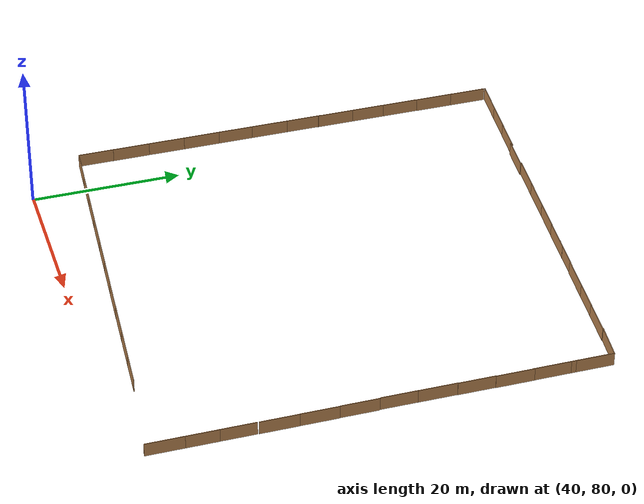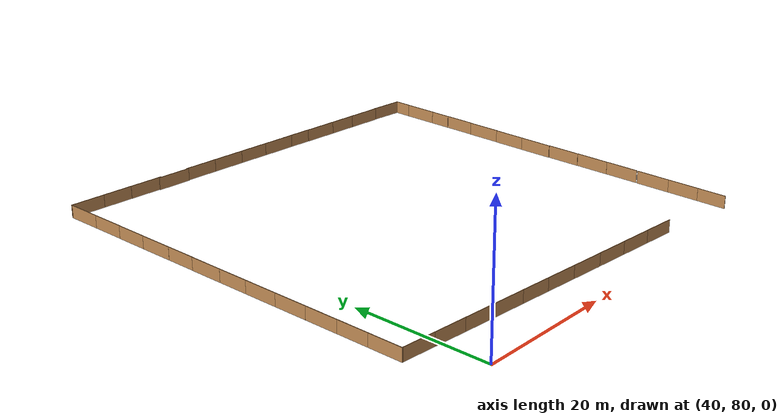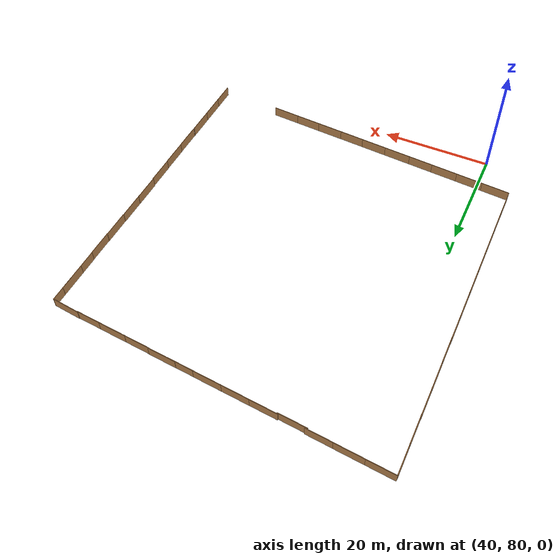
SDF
<sdf version="1.7">
 <world name="default">
  <model name="fence">
   <static>1</static>
   <link name="link">
    <pose>0 0 0.915 0 -0 0</pose>
    <collision name="collision"><geometry><box><size>0.1 5 1.83</size></box></geometry></collision>
    <visual name="visual">
     <cast_shadows>0</cast_shadows>
     <geometry><box><size>0.1 5 1.83</size></box></geometry>
     <material>
      <script>
       <uri>https://fuel.ignitionrobotics.org/1.0/athackst/models/fence/2/files/materials/scripts</uri>
       <uri>https://fuel.ignitionrobotics.org/1.0/athackst/models/fence/2/files/materials/textures</uri>
       <name>Fence/WoodBoarding</name>
      </script>
     </material>
    </visual>
   </link>
   <pose>94.0975 89.0273 0 0 -0 0</pose>
  </model>
  <model name="fence_clone">
   <static>1</static>
   <link name="link">
    <pose>0 0 0.915 0 -0 0</pose>
    <collision name="collision"><geometry><box><size>0.1 5 1.83</size></box></geometry></collision>
    <visual name="visual">
     <cast_shadows>0</cast_shadows>
     <geometry><box><size>0.1 5 1.83</size></box></geometry>
     <material>
      <script>
       <uri>https://fuel.ignitionrobotics.org/1.0/athackst/models/fence/2/files/materials/scripts</uri>
       <uri>https://fuel.ignitionrobotics.org/1.0/athackst/models/fence/2/files/materials/textures</uri>
       <name>Fence/WoodBoarding</name>
      </script>
     </material>
    </visual>
   </link>
   <pose>94.0884 93.6265 0 0 -0 0</pose>
  </model>
  <model name="fence_clone_0">
   <static>1</static>
   <link name="link">
    <pose>0 0 0.915 0 -0 0</pose>
    <collision name="collision"><geometry><box><size>0.1 5 1.83</size></box></geometry></collision>
    <visual name="visual">
     <cast_shadows>0</cast_shadows>
     <geometry><box><size>0.1 5 1.83</size></box></geometry>
     <material>
      <script>
       <uri>https://fuel.ignitionrobotics.org/1.0/athackst/models/fence/2/files/materials/scripts</uri>
       <uri>https://fuel.ignitionrobotics.org/1.0/athackst/models/fence/2/files/materials/textures</uri>
       <name>Fence/WoodBoarding</name>
      </script>
     </material>
    </visual>
   </link>
   <pose>94.1133 98.7974 0 0 -0 0</pose>
  </model>
  <model name="fence_clone_1">
   <static>1</static>
   <link name="link">
    <pose>0 0 0.915 0 -0 0</pose>
    <collision name="collision"><geometry><box><size>0.1 5 1.83</size></box></geometry></collision>
    <visual name="visual">
     <cast_shadows>0</cast_shadows>
     <geometry><box><size>0.1 5 1.83</size></box></geometry>
     <material>
      <script>
       <uri>https://fuel.ignitionrobotics.org/1.0/athackst/models/fence/2/files/materials/scripts</uri>
       <uri>https://fuel.ignitionrobotics.org/1.0/athackst/models/fence/2/files/materials/textures</uri>
       <name>Fence/WoodBoarding</name>
      </script>
     </material>
    </visual>
   </link>
   <pose>94.091 103.784 0 0 -0 0</pose>
  </model>
  <model name="fence_clone_2">
   <static>1</static>
   <link name="link">
    <pose>0 0 0.915 0 -0 0</pose>
    <collision name="collision"><geometry><box><size>0.1 5 1.83</size></box></geometry></collision>
    <visual name="visual">
     <cast_shadows>0</cast_shadows>
     <geometry><box><size>0.1 5 1.83</size></box></geometry>
     <material>
      <script>
       <uri>https://fuel.ignitionrobotics.org/1.0/athackst/models/fence/2/files/materials/scripts</uri>
       <uri>https://fuel.ignitionrobotics.org/1.0/athackst/models/fence/2/files/materials/textures</uri>
       <name>Fence/WoodBoarding</name>
      </script>
     </material>
    </visual>
   </link>
   <pose>94.05 108.799 0 0 -0 0</pose>
  </model>
  <model name="fence_clone_3">
   <static>1</static>
   <link name="link">
    <pose>0 0 0.915 0 -0 0</pose>
    <collision name="collision"><geometry><box><size>0.1 5 1.83</size></box></geometry></collision>
    <visual name="visual">
     <cast_shadows>0</cast_shadows>
     <geometry><box><size>0.1 5 1.83</size></box></geometry>
     <material>
      <script>
       <uri>https://fuel.ignitionrobotics.org/1.0/athackst/models/fence/2/files/materials/scripts</uri>
       <uri>https://fuel.ignitionrobotics.org/1.0/athackst/models/fence/2/files/materials/textures</uri>
       <name>Fence/WoodBoarding</name>
      </script>
     </material>
    </visual>
   </link>
   <pose>93.9727 113.815 0 0 -0 0</pose>
  </model>
  <model name="fence_clone_4">
   <static>1</static>
   <link name="link">
    <pose>0 0 0.915 0 -0 0</pose>
    <collision name="collision"><geometry><box><size>0.1 5 1.83</size></box></geometry></collision>
    <visual name="visual">
     <cast_shadows>0</cast_shadows>
     <geometry><box><size>0.1 5 1.83</size></box></geometry>
     <material>
      <script>
       <uri>https://fuel.ignitionrobotics.org/1.0/athackst/models/fence/2/files/materials/scripts</uri>
       <uri>https://fuel.ignitionrobotics.org/1.0/athackst/models/fence/2/files/materials/textures</uri>
       <name>Fence/WoodBoarding</name>
      </script>
     </material>
    </visual>
   </link>
   <pose>93.9907 118.594 0 0 -0 0</pose>
  </model>
  <model name="fence_clone_5">
   <static>1</static>
   <link name="link">
    <pose>0 0 0.915 0 -0 0</pose>
    <collision name="collision"><geometry><box><size>0.1 5 1.83</size></box></geometry></collision>
    <visual name="visual">
     <cast_shadows>0</cast_shadows>
     <geometry><box><size>0.1 5 1.83</size></box></geometry>
     <material>
      <script>
       <uri>https://fuel.ignitionrobotics.org/1.0/athackst/models/fence/2/files/materials/scripts</uri>
       <uri>https://fuel.ignitionrobotics.org/1.0/athackst/models/fence/2/files/materials/textures</uri>
       <name>Fence/WoodBoarding</name>
      </script>
     </material>
    </visual>
   </link>
   <pose>94.0368 123.601 0 0 -0 0</pose>
  </model>
  <model name="fence_clone_6">
   <static>1</static>
   <link name="link">
    <pose>0 0 0.915 0 -0 0</pose>
    <collision name="collision"><geometry><box><size>0.1 5 1.83</size></box></geometry></collision>
    <visual name="visual">
     <cast_shadows>0</cast_shadows>
     <geometry><box><size>0.1 5 1.83</size></box></geometry>
     <material>
      <script>
       <uri>https://fuel.ignitionrobotics.org/1.0/athackst/models/fence/2/files/materials/scripts</uri>
       <uri>https://fuel.ignitionrobotics.org/1.0/athackst/models/fence/2/files/materials/textures</uri>
       <name>Fence/WoodBoarding</name>
      </script>
     </material>
    </visual>
   </link>
   <pose>94.0843 128.453 0 0 -0 0</pose>
  </model>
  <model name="fence_clone_7">
   <static>1</static>
   <link name="link">
    <pose>0 0 0.915 0 -0 0</pose>
    <collision name="collision"><geometry><box><size>0.1 5 1.83</size></box></geometry></collision>
    <visual name="visual">
     <cast_shadows>0</cast_shadows>
     <geometry><box><size>0.1 5 1.83</size></box></geometry>
     <material>
      <script>
       <uri>https://fuel.ignitionrobotics.org/1.0/athackst/models/fence/2/files/materials/scripts</uri>
       <uri>https://fuel.ignitionrobotics.org/1.0/athackst/models/fence/2/files/materials/textures</uri>
       <name>Fence/WoodBoarding</name>
      </script>
     </material>
    </visual>
   </link>
   <pose>94.0552 133.187 0 0 -0 0</pose>
  </model>
  <model name="fence_clone_8">
   <static>1</static>
   <link name="link">
    <pose>0 0 0.915 0 -0 0</pose>
    <collision name="collision"><geometry><box><size>0.1 5 1.83</size></box></geometry></collision>
    <visual name="visual">
     <cast_shadows>0</cast_shadows>
     <geometry><box><size>0.1 5 1.83</size></box></geometry>
     <material>
      <script>
       <uri>https://fuel.ignitionrobotics.org/1.0/athackst/models/fence/2/files/materials/scripts</uri>
       <uri>https://fuel.ignitionrobotics.org/1.0/athackst/models/fence/2/files/materials/textures</uri>
       <name>Fence/WoodBoarding</name>
      </script>
     </material>
    </visual>
   </link>
   <pose>94.0587 138.819 0 0 -0 0</pose>
  </model>
  <model name="fence_clone_7_clone">
   <static>1</static>
   <link name="link">
    <pose>0 0 0.915 0 -0 0</pose>
    <collision name="collision"><geometry><box><size>0.1 5 1.83</size></box></geometry></collision>
    <visual name="visual">
     <cast_shadows>0</cast_shadows>
     <geometry><box><size>0.1 5 1.83</size></box></geometry>
     <material>
      <script>
       <uri>https://fuel.ignitionrobotics.org/1.0/athackst/models/fence/2/files/materials/scripts</uri>
       <uri>https://fuel.ignitionrobotics.org/1.0/athackst/models/fence/2/files/materials/textures</uri>
       <name>Fence/WoodBoarding</name>
      </script>
     </material>
    </visual>
   </link>
   <pose>94.0544 136.339 0 0 -0 0</pose>
  </model>
  <model name="fence_clone_7_clone_clone">
   <static>1</static>
   <link name="link">
    <pose>0 0 0.915 0 -0 0</pose>
    <collision name="collision"><geometry><box><size>0.1 5 1.83</size></box></geometry></collision>
    <visual name="visual">
     <cast_shadows>0</cast_shadows>
     <geometry><box><size>0.1 5 1.83</size></box></geometry>
     <material>
      <script>
       <uri>https://fuel.ignitionrobotics.org/1.0/athackst/models/fence/2/files/materials/scripts</uri>
       <uri>https://fuel.ignitionrobotics.org/1.0/athackst/models/fence/2/files/materials/textures</uri>
       <name>Fence/WoodBoarding</name>
      </script>
     </material>
    </visual>
   </link>
   <pose>91.6023 141.517 0 0 -0 1.4702</pose>
  </model>
  <model name="fence_clone_7_clone_clone_clone">
   <static>1</static>
   <link name="link">
    <pose>0 0 0.915 0 -0 0</pose>
    <collision name="collision"><geometry><box><size>0.1 5 1.83</size></box></geometry></collision>
    <visual name="visual">
     <cast_shadows>0</cast_shadows>
     <geometry><box><size>0.1 5 1.83</size></box></geometry>
     <material>
      <script>
       <uri>https://fuel.ignitionrobotics.org/1.0/athackst/models/fence/2/files/materials/scripts</uri>
       <uri>https://fuel.ignitionrobotics.org/1.0/athackst/models/fence/2/files/materials/textures</uri>
       <name>Fence/WoodBoarding</name>
      </script>
     </material>
    </visual>
   </link>
   <pose>86.8192 141.871 0 0 -0 1.49488</pose>
  </model>
  <model name="fence_clone_7_clone_clone_clone_0">
   <static>1</static>
   <link name="link">
    <pose>0 0 0.915 0 -0 0</pose>
    <collision name="collision"><geometry><box><size>0.1 5 1.83</size></box></geometry></collision>
    <visual name="visual">
     <cast_shadows>0</cast_shadows>
     <geometry><box><size>0.1 5 1.83</size></box></geometry>
     <material>
      <script>
       <uri>https://fuel.ignitionrobotics.org/1.0/athackst/models/fence/2/files/materials/scripts</uri>
       <uri>https://fuel.ignitionrobotics.org/1.0/athackst/models/fence/2/files/materials/textures</uri>
       <name>Fence/WoodBoarding</name>
      </script>
     </material>
    </visual>
   </link>
   <pose>82.4437 142.211 0 0 -0 1.49488</pose>
  </model>
  <model name="fence_clone_7_clone_clone_clone_1">
   <static>1</static>
   <link name="link">
    <pose>0 0 0.915 0 -0 0</pose>
    <collision name="collision"><geometry><box><size>0.1 5 1.83</size></box></geometry></collision>
    <visual name="visual">
     <cast_shadows>0</cast_shadows>
     <geometry><box><size>0.1 5 1.83</size></box></geometry>
     <material>
      <script>
       <uri>https://fuel.ignitionrobotics.org/1.0/athackst/models/fence/2/files/materials/scripts</uri>
       <uri>https://fuel.ignitionrobotics.org/1.0/athackst/models/fence/2/files/materials/textures</uri>
       <name>Fence/WoodBoarding</name>
      </script>
     </material>
    </visual>
   </link>
   <pose>77.7828 142.558 0 0 -0 1.49488</pose>
  </model>
  <model name="fence_clone_7_clone_clone_clone_2">
   <static>1</static>
   <link name="link">
    <pose>0 0 0.915 0 -0 0</pose>
    <collision name="collision"><geometry><box><size>0.1 5 1.83</size></box></geometry></collision>
    <visual name="visual">
     <cast_shadows>0</cast_shadows>
     <geometry><box><size>0.1 5 1.83</size></box></geometry>
     <material>
      <script>
       <uri>https://fuel.ignitionrobotics.org/1.0/athackst/models/fence/2/files/materials/scripts</uri>
       <uri>https://fuel.ignitionrobotics.org/1.0/athackst/models/fence/2/files/materials/textures</uri>
       <name>Fence/WoodBoarding</name>
      </script>
     </material>
    </visual>
   </link>
   <pose>73.0617 142.957 0 0 -0 1.49488</pose>
  </model>
  <model name="fence_clone_7_clone_clone_clone_3">
   <static>1</static>
   <link name="link">
    <pose>0 0 0.915 0 -0 0</pose>
    <collision name="collision"><geometry><box><size>0.1 5 1.83</size></box></geometry></collision>
    <visual name="visual">
     <cast_shadows>0</cast_shadows>
     <geometry><box><size>0.1 5 1.83</size></box></geometry>
     <material>
      <script>
       <uri>https://fuel.ignitionrobotics.org/1.0/athackst/models/fence/2/files/materials/scripts</uri>
       <uri>https://fuel.ignitionrobotics.org/1.0/athackst/models/fence/2/files/materials/textures</uri>
       <name>Fence/WoodBoarding</name>
      </script>
     </material>
    </visual>
   </link>
   <pose>69.5223 143.204 0 0 -0 1.49488</pose>
  </model>
  <model name="fence_clone_7_clone_clone_clone_4">
   <static>1</static>
   <link name="link">
    <pose>0 0 0.915 0 -0 0</pose>
    <collision name="collision"><geometry><box><size>0.1 5 1.83</size></box></geometry></collision>
    <visual name="visual">
     <cast_shadows>0</cast_shadows>
     <geometry><box><size>0.1 5 1.83</size></box></geometry>
     <material>
      <script>
       <uri>https://fuel.ignitionrobotics.org/1.0/athackst/models/fence/2/files/materials/scripts</uri>
       <uri>https://fuel.ignitionrobotics.org/1.0/athackst/models/fence/2/files/materials/textures</uri>
       <name>Fence/WoodBoarding</name>
      </script>
     </material>
    </visual>
   </link>
   <pose>64.8943 143.567 0 0 -0 1.49488</pose>
  </model>
  <model name="fence_clone_7_clone_clone_clone_5">
   <static>1</static>
   <link name="link">
    <pose>0 0 0.915 0 -0 0</pose>
    <collision name="collision"><geometry><box><size>0.1 5 1.83</size></box></geometry></collision>
    <visual name="visual">
     <cast_shadows>0</cast_shadows>
     <geometry><box><size>0.1 5 1.83</size></box></geometry>
     <material>
      <script>
       <uri>https://fuel.ignitionrobotics.org/1.0/athackst/models/fence/2/files/materials/scripts</uri>
       <uri>https://fuel.ignitionrobotics.org/1.0/athackst/models/fence/2/files/materials/textures</uri>
       <name>Fence/WoodBoarding</name>
      </script>
     </material>
    </visual>
   </link>
   <pose>60.0864 143.923 0 0 -0 1.49488</pose>
  </model>
  <model name="fence_clone_7_clone_clone_clone_6">
   <static>1</static>
   <link name="link">
    <pose>0 0 0.915 0 -0 0</pose>
    <collision name="collision"><geometry><box><size>0.1 5 1.83</size></box></geometry></collision>
    <visual name="visual">
     <cast_shadows>0</cast_shadows>
     <geometry><box><size>0.1 5 1.83</size></box></geometry>
     <material>
      <script>
       <uri>https://fuel.ignitionrobotics.org/1.0/athackst/models/fence/2/files/materials/scripts</uri>
       <uri>https://fuel.ignitionrobotics.org/1.0/athackst/models/fence/2/files/materials/textures</uri>
       <name>Fence/WoodBoarding</name>
      </script>
     </material>
    </visual>
   </link>
   <pose>55.2637 144.285 0 0 -0 1.49488</pose>
  </model>
  <model name="fence_clone_7_clone_clone_clone_7">
   <static>1</static>
   <link name="link">
    <pose>0 0 0.915 0 -0 0</pose>
    <collision name="collision"><geometry><box><size>0.1 5 1.83</size></box></geometry></collision>
    <visual name="visual">
     <cast_shadows>0</cast_shadows>
     <geometry><box><size>0.1 5 1.83</size></box></geometry>
     <material>
      <script>
       <uri>https://fuel.ignitionrobotics.org/1.0/athackst/models/fence/2/files/materials/scripts</uri>
       <uri>https://fuel.ignitionrobotics.org/1.0/athackst/models/fence/2/files/materials/textures</uri>
       <name>Fence/WoodBoarding</name>
      </script>
     </material>
    </visual>
   </link>
   <pose>50.4764 144.497 0 0 -0 1.49488</pose>
  </model>
  <model name="fence_clone_7_clone_clone_clone_8">
   <static>1</static>
   <link name="link">
    <pose>0 0 0.915 0 -0 0</pose>
    <collision name="collision"><geometry><box><size>0.1 5 1.83</size></box></geometry></collision>
    <visual name="visual">
     <cast_shadows>0</cast_shadows>
     <geometry><box><size>0.1 5 1.83</size></box></geometry>
     <material>
      <script>
       <uri>https://fuel.ignitionrobotics.org/1.0/athackst/models/fence/2/files/materials/scripts</uri>
       <uri>https://fuel.ignitionrobotics.org/1.0/athackst/models/fence/2/files/materials/textures</uri>
       <name>Fence/WoodBoarding</name>
      </script>
     </material>
    </visual>
   </link>
   <pose>45.9412 144.996 0 0 -0 1.49488</pose>
  </model>
  <model name="fence_clone_7_clone_clone_clone_9">
   <static>1</static>
   <link name="link">
    <pose>0 0 0.915 0 -0 0</pose>
    <collision name="collision"><geometry><box><size>0.1 5 1.83</size></box></geometry></collision>
    <visual name="visual">
     <cast_shadows>0</cast_shadows>
     <geometry><box><size>0.1 5 1.83</size></box></geometry>
     <material>
      <script>
       <uri>https://fuel.ignitionrobotics.org/1.0/athackst/models/fence/2/files/materials/scripts</uri>
       <uri>https://fuel.ignitionrobotics.org/1.0/athackst/models/fence/2/files/materials/textures</uri>
       <name>Fence/WoodBoarding</name>
      </script>
     </material>
    </visual>
   </link>
   <pose>41.4295 145.352 0 0 -0 1.49488</pose>
  </model>
  <model name="fence_clone_7_clone_clone_clone_10">
   <static>1</static>
   <link name="link">
    <pose>0 0 0.915 0 -0 0</pose>
    <collision name="collision"><geometry><box><size>0.1 5 1.83</size></box></geometry></collision>
    <visual name="visual">
     <cast_shadows>0</cast_shadows>
     <geometry><box><size>0.1 5 1.83</size></box></geometry>
     <material>
      <script>
       <uri>https://fuel.ignitionrobotics.org/1.0/athackst/models/fence/2/files/materials/scripts</uri>
       <uri>https://fuel.ignitionrobotics.org/1.0/athackst/models/fence/2/files/materials/textures</uri>
       <name>Fence/WoodBoarding</name>
      </script>
     </material>
    </visual>
   </link>
   <pose>36.6057 145.718 0 0 -0 1.49488</pose>
  </model>
  <model name="fence_clone_7_clone_clone_0">
   <static>1</static>
   <link name="link">
    <pose>0 0 0.915 0 -0 0</pose>
    <collision name="collision"><geometry><box><size>0.1 5 1.83</size></box></geometry></collision>
    <visual name="visual">
     <cast_shadows>0</cast_shadows>
     <geometry><box><size>0.1 5 1.83</size></box></geometry>
     <material>
      <script>
       <uri>https://fuel.ignitionrobotics.org/1.0/athackst/models/fence/2/files/materials/scripts</uri>
       <uri>https://fuel.ignitionrobotics.org/1.0/athackst/models/fence/2/files/materials/textures</uri>
       <name>Fence/WoodBoarding</name>
      </script>
     </material>
    </visual>
   </link>
   <pose>34.1448 143.259 0 0 -0 0</pose>
  </model>
  <model name="fence_clone_7_clone_clone_1">
   <static>1</static>
   <link name="link">
    <pose>0 0 0.915 0 -0 0</pose>
    <collision name="collision"><geometry><box><size>0.1 5 1.83</size></box></geometry></collision>
    <visual name="visual">
     <cast_shadows>0</cast_shadows>
     <geometry><box><size>0.1 5 1.83</size></box></geometry>
     <material>
      <script>
       <uri>https://fuel.ignitionrobotics.org/1.0/athackst/models/fence/2/files/materials/scripts</uri>
       <uri>https://fuel.ignitionrobotics.org/1.0/athackst/models/fence/2/files/materials/textures</uri>
       <name>Fence/WoodBoarding</name>
      </script>
     </material>
    </visual>
   </link>
   <pose>34.1455 138.289 0 0 -0 0</pose>
  </model>
  <model name="fence_clone_7_clone_clone_2">
   <static>1</static>
   <link name="link">
    <pose>0 0 0.915 0 -0 0</pose>
    <collision name="collision"><geometry><box><size>0.1 5 1.83</size></box></geometry></collision>
    <visual name="visual">
     <cast_shadows>0</cast_shadows>
     <geometry><box><size>0.1 5 1.83</size></box></geometry>
     <material>
      <script>
       <uri>https://fuel.ignitionrobotics.org/1.0/athackst/models/fence/2/files/materials/scripts</uri>
       <uri>https://fuel.ignitionrobotics.org/1.0/athackst/models/fence/2/files/materials/textures</uri>
       <name>Fence/WoodBoarding</name>
      </script>
     </material>
    </visual>
   </link>
   <pose>34.1203 133.334 0 0 -0 0</pose>
  </model>
  <model name="fence_clone_7_clone_clone_3">
   <static>1</static>
   <link name="link">
    <pose>0 0 0.915 0 -0 0</pose>
    <collision name="collision"><geometry><box><size>0.1 5 1.83</size></box></geometry></collision>
    <visual name="visual">
     <cast_shadows>0</cast_shadows>
     <geometry><box><size>0.1 5 1.83</size></box></geometry>
     <material>
      <script>
       <uri>https://fuel.ignitionrobotics.org/1.0/athackst/models/fence/2/files/materials/scripts</uri>
       <uri>https://fuel.ignitionrobotics.org/1.0/athackst/models/fence/2/files/materials/textures</uri>
       <name>Fence/WoodBoarding</name>
      </script>
     </material>
    </visual>
   </link>
   <pose>34.1146 128.602 0 0 -0 0</pose>
  </model>
  <model name="fence_clone_7_clone_clone_4">
   <static>1</static>
   <link name="link">
    <pose>0 0 0.915 0 -0 0</pose>
    <collision name="collision"><geometry><box><size>0.1 5 1.83</size></box></geometry></collision>
    <visual name="visual">
     <cast_shadows>0</cast_shadows>
     <geometry><box><size>0.1 5 1.83</size></box></geometry>
     <material>
      <script>
       <uri>https://fuel.ignitionrobotics.org/1.0/athackst/models/fence/2/files/materials/scripts</uri>
       <uri>https://fuel.ignitionrobotics.org/1.0/athackst/models/fence/2/files/materials/textures</uri>
       <name>Fence/WoodBoarding</name>
      </script>
     </material>
    </visual>
   </link>
   <pose>34.1239 123.914 0 0 -0 0</pose>
  </model>
  <model name="fence_clone_7_clone_clone_5">
   <static>1</static>
   <link name="link">
    <pose>0 0 0.915 0 -0 0</pose>
    <collision name="collision"><geometry><box><size>0.1 5 1.83</size></box></geometry></collision>
    <visual name="visual">
     <cast_shadows>0</cast_shadows>
     <geometry><box><size>0.1 5 1.83</size></box></geometry>
     <material>
      <script>
       <uri>https://fuel.ignitionrobotics.org/1.0/athackst/models/fence/2/files/materials/scripts</uri>
       <uri>https://fuel.ignitionrobotics.org/1.0/athackst/models/fence/2/files/materials/textures</uri>
       <name>Fence/WoodBoarding</name>
      </script>
     </material>
    </visual>
   </link>
   <pose>34.0967 119.162 0 0 -0 0</pose>
  </model>
  <model name="fence_clone_7_clone_clone_6">
   <static>1</static>
   <link name="link">
    <pose>0 0 0.915 0 -0 0</pose>
    <collision name="collision"><geometry><box><size>0.1 5 1.83</size></box></geometry></collision>
    <visual name="visual">
     <cast_shadows>0</cast_shadows>
     <geometry><box><size>0.1 5 1.83</size></box></geometry>
     <material>
      <script>
       <uri>https://fuel.ignitionrobotics.org/1.0/athackst/models/fence/2/files/materials/scripts</uri>
       <uri>https://fuel.ignitionrobotics.org/1.0/athackst/models/fence/2/files/materials/textures</uri>
       <name>Fence/WoodBoarding</name>
      </script>
     </material>
    </visual>
   </link>
   <pose>34.099 114.374 0 0 -0 0</pose>
  </model>
  <model name="fence_clone_7_clone_clone_7">
   <static>1</static>
   <link name="link">
    <pose>0 0 0.915 0 -0 0</pose>
    <collision name="collision"><geometry><box><size>0.1 5 1.83</size></box></geometry></collision>
    <visual name="visual">
     <cast_shadows>0</cast_shadows>
     <geometry><box><size>0.1 5 1.83</size></box></geometry>
     <material>
      <script>
       <uri>https://fuel.ignitionrobotics.org/1.0/athackst/models/fence/2/files/materials/scripts</uri>
       <uri>https://fuel.ignitionrobotics.org/1.0/athackst/models/fence/2/files/materials/textures</uri>
       <name>Fence/WoodBoarding</name>
      </script>
     </material>
    </visual>
   </link>
   <pose>34.0974 109.621 0 0 -0 0</pose>
  </model>
  <model name="fence_clone_7_clone_clone_8">
   <static>1</static>
   <link name="link">
    <pose>0 0 0.915 0 -0 0</pose>
    <collision name="collision"><geometry><box><size>0.1 5 1.83</size></box></geometry></collision>
    <visual name="visual">
     <cast_shadows>0</cast_shadows>
     <geometry><box><size>0.1 5 1.83</size></box></geometry>
     <material>
      <script>
       <uri>https://fuel.ignitionrobotics.org/1.0/athackst/models/fence/2/files/materials/scripts</uri>
       <uri>https://fuel.ignitionrobotics.org/1.0/athackst/models/fence/2/files/materials/textures</uri>
       <name>Fence/WoodBoarding</name>
      </script>
     </material>
    </visual>
   </link>
   <pose>34.1003 104.676 0 0 -0 0</pose>
  </model>
  <model name="fence_clone_7_clone_clone_9">
   <static>1</static>
   <link name="link">
    <pose>0 0 0.915 0 -0 0</pose>
    <collision name="collision"><geometry><box><size>0.1 5 1.83</size></box></geometry></collision>
    <visual name="visual">
     <cast_shadows>0</cast_shadows>
     <geometry><box><size>0.1 5 1.83</size></box></geometry>
     <material>
      <script>
       <uri>https://fuel.ignitionrobotics.org/1.0/athackst/models/fence/2/files/materials/scripts</uri>
       <uri>https://fuel.ignitionrobotics.org/1.0/athackst/models/fence/2/files/materials/textures</uri>
       <name>Fence/WoodBoarding</name>
      </script>
     </material>
    </visual>
   </link>
   <pose>34.1041 99.7275 0 0 -0 0</pose>
  </model>
  <model name="fence_clone_7_clone_clone_10">
   <static>1</static>
   <link name="link">
    <pose>0 0 0.915 0 -0 0</pose>
    <collision name="collision"><geometry><box><size>0.1 5 1.83</size></box></geometry></collision>
    <visual name="visual">
     <cast_shadows>0</cast_shadows>
     <geometry><box><size>0.1 5 1.83</size></box></geometry>
     <material>
      <script>
       <uri>https://fuel.ignitionrobotics.org/1.0/athackst/models/fence/2/files/materials/scripts</uri>
       <uri>https://fuel.ignitionrobotics.org/1.0/athackst/models/fence/2/files/materials/textures</uri>
       <name>Fence/WoodBoarding</name>
      </script>
     </material>
    </visual>
   </link>
   <pose>34.1108 94.796 0 0 -0 0</pose>
  </model>
  <model name="fence_clone_7_clone_clone_11">
   <static>1</static>
   <link name="link">
    <pose>0 0 0.915 0 -0 0</pose>
    <collision name="collision"><geometry><box><size>0.1 5 1.83</size></box></geometry></collision>
    <visual name="visual">
     <cast_shadows>0</cast_shadows>
     <geometry><box><size>0.1 5 1.83</size></box></geometry>
     <material>
      <script>
       <uri>https://fuel.ignitionrobotics.org/1.0/athackst/models/fence/2/files/materials/scripts</uri>
       <uri>https://fuel.ignitionrobotics.org/1.0/athackst/models/fence/2/files/materials/textures</uri>
       <name>Fence/WoodBoarding</name>
      </script>
     </material>
    </visual>
   </link>
   <pose>34.1049 90.0151 0 0 -0 0</pose>
  </model>
  <model name="fence_clone_7_clone_clone_clone_10_clone">
   <static>1</static>
   <link name="link">
    <pose>0 0 0.915 0 -0 0</pose>
    <collision name="collision"><geometry><box><size>0.1 5 1.83</size></box></geometry></collision>
    <visual name="visual">
     <cast_shadows>0</cast_shadows>
     <geometry><box><size>0.1 5 1.83</size></box></geometry>
     <material>
      <script>
       <uri>https://fuel.ignitionrobotics.org/1.0/athackst/models/fence/2/files/materials/scripts</uri>
       <uri>https://fuel.ignitionrobotics.org/1.0/athackst/models/fence/2/files/materials/textures</uri>
       <name>Fence/WoodBoarding</name>
      </script>
     </material>
    </visual>
   </link>
   <pose>36.6462 87.3386 0 0 -0 1.49488</pose>
  </model>
  <model name="fence_clone_7_clone_clone_clone_10_clone_0">
   <static>1</static>
   <link name="link">
    <pose>0 0 0.915 0 -0 0</pose>
    <collision name="collision"><geometry><box><size>0.1 5 1.83</size></box></geometry></collision>
    <visual name="visual">
     <cast_shadows>0</cast_shadows>
     <geometry><box><size>0.1 5 1.83</size></box></geometry>
     <material>
      <script>
       <uri>https://fuel.ignitionrobotics.org/1.0/athackst/models/fence/2/files/materials/scripts</uri>
       <uri>https://fuel.ignitionrobotics.org/1.0/athackst/models/fence/2/files/materials/textures</uri>
       <name>Fence/WoodBoarding</name>
      </script>
     </material>
    </visual>
   </link>
   <pose>41.5507 86.956 0 0 -0 1.49488</pose>
  </model>
  <model name="fence_clone_7_clone_clone_clone_10_clone_1">
   <static>1</static>
   <link name="link">
    <pose>0 0 0.915 0 -0 0</pose>
    <collision name="collision"><geometry><box><size>0.1 5 1.83</size></box></geometry></collision>
    <visual name="visual">
     <cast_shadows>0</cast_shadows>
     <geometry><box><size>0.1 5 1.83</size></box></geometry>
     <material>
      <script>
       <uri>https://fuel.ignitionrobotics.org/1.0/athackst/models/fence/2/files/materials/scripts</uri>
       <uri>https://fuel.ignitionrobotics.org/1.0/athackst/models/fence/2/files/materials/textures</uri>
       <name>Fence/WoodBoarding</name>
      </script>
     </material>
    </visual>
   </link>
   <pose>46.4391 86.5787 0 0 -0 1.49488</pose>
  </model>
  <model name="fence_clone_7_clone_clone_clone_10_clone_2">
   <static>1</static>
   <link name="link">
    <pose>0 0 0.915 0 -0 0</pose>
    <collision name="collision"><geometry><box><size>0.1 5 1.83</size></box></geometry></collision>
    <visual name="visual">
     <cast_shadows>0</cast_shadows>
     <geometry><box><size>0.1 5 1.83</size></box></geometry>
     <material>
      <script>
       <uri>https://fuel.ignitionrobotics.org/1.0/athackst/models/fence/2/files/materials/scripts</uri>
       <uri>https://fuel.ignitionrobotics.org/1.0/athackst/models/fence/2/files/materials/textures</uri>
       <name>Fence/WoodBoarding</name>
      </script>
     </material>
    </visual>
   </link>
   <pose>51.1791 86.2136 0 0 -0 1.49488</pose>
  </model>
  <model name="fence_clone_7_clone_clone_clone_10_clone_3">
   <static>1</static>
   <link name="link">
    <pose>0 0 0.915 0 -0 0</pose>
    <collision name="collision"><geometry><box><size>0.1 5 1.83</size></box></geometry></collision>
    <visual name="visual">
     <cast_shadows>0</cast_shadows>
     <geometry><box><size>0.1 5 1.83</size></box></geometry>
     <material>
      <script>
       <uri>https://fuel.ignitionrobotics.org/1.0/athackst/models/fence/2/files/materials/scripts</uri>
       <uri>https://fuel.ignitionrobotics.org/1.0/athackst/models/fence/2/files/materials/textures</uri>
       <name>Fence/WoodBoarding</name>
      </script>
     </material>
    </visual>
   </link>
   <pose>55.9502 85.8556 0 0 -0 1.49488</pose>
  </model>
  <model name="fence_clone_7_clone_clone_clone_10_clone_4">
   <static>1</static>
   <link name="link">
    <pose>0 0 0.915 0 -0 0</pose>
    <collision name="collision"><geometry><box><size>0.1 5 1.83</size></box></geometry></collision>
    <visual name="visual">
     <cast_shadows>0</cast_shadows>
     <geometry><box><size>0.1 5 1.83</size></box></geometry>
     <material>
      <script>
       <uri>https://fuel.ignitionrobotics.org/1.0/athackst/models/fence/2/files/materials/scripts</uri>
       <uri>https://fuel.ignitionrobotics.org/1.0/athackst/models/fence/2/files/materials/textures</uri>
       <name>Fence/WoodBoarding</name>
      </script>
     </material>
    </visual>
   </link>
   <pose>60.7024 85.4937 0 0 -0 1.49488</pose>
  </model>
  <model name="fence_clone_7_clone_clone_clone_10_clone_5">
   <static>1</static>
   <link name="link">
    <pose>0 0 0.915 0 -0 0</pose>
    <collision name="collision"><geometry><box><size>0.1 5 1.83</size></box></geometry></collision>
    <visual name="visual">
     <cast_shadows>0</cast_shadows>
     <geometry><box><size>0.1 5 1.83</size></box></geometry>
     <material>
      <script>
       <uri>https://fuel.ignitionrobotics.org/1.0/athackst/models/fence/2/files/materials/scripts</uri>
       <uri>https://fuel.ignitionrobotics.org/1.0/athackst/models/fence/2/files/materials/textures</uri>
       <name>Fence/WoodBoarding</name>
      </script>
     </material>
    </visual>
   </link>
   <pose>65.4776 85.1247 0 0 -0 1.49488</pose>
  </model>
  <model name="fence_clone_7_clone_clone_clone_10_clone_6">
   <static>1</static>
   <link name="link">
    <pose>0 0 0.915 0 -0 0</pose>
    <collision name="collision"><geometry><box><size>0.1 5 1.83</size></box></geometry></collision>
    <visual name="visual">
     <cast_shadows>0</cast_shadows>
     <geometry><box><size>0.1 5 1.83</size></box></geometry>
     <material>
      <script>
       <uri>https://fuel.ignitionrobotics.org/1.0/athackst/models/fence/2/files/materials/scripts</uri>
       <uri>https://fuel.ignitionrobotics.org/1.0/athackst/models/fence/2/files/materials/textures</uri>
       <name>Fence/WoodBoarding</name>
      </script>
     </material>
    </visual>
   </link>
   <pose>70.2991 84.7711 0 0 -0 1.49488</pose>
  </model>
  <model name="fence_clone_7_clone_clone_clone_10_clone_7">
   <static>1</static>
   <link name="link">
    <pose>0 0 0.915 0 -0 0</pose>
    <collision name="collision"><geometry><box><size>0.1 5 1.83</size></box></geometry></collision>
    <visual name="visual">
     <cast_shadows>0</cast_shadows>
     <geometry><box><size>0.1 5 1.83</size></box></geometry>
     <material>
      <script>
       <uri>https://fuel.ignitionrobotics.org/1.0/athackst/models/fence/2/files/materials/scripts</uri>
       <uri>https://fuel.ignitionrobotics.org/1.0/athackst/models/fence/2/files/materials/textures</uri>
       <name>Fence/WoodBoarding</name>
      </script>
     </material>
    </visual>
   </link>
   <pose>75.1329 84.4112 0 0 -0 1.49488</pose>
  </model>
  <model name="fence_clone_7_clone_clone_clone_10_clone_8">
   <static>1</static>
   <link name="link">
    <pose>0 0 0.915 0 -0 0</pose>
    <collision name="collision"><geometry><box><size>0.1 5 1.83</size></box></geometry></collision>
    <visual name="visual">
     <cast_shadows>0</cast_shadows>
     <geometry><box><size>0.1 5 1.83</size></box></geometry>
     <material>
      <script>
       <uri>https://fuel.ignitionrobotics.org/1.0/athackst/models/fence/2/files/materials/scripts</uri>
       <uri>https://fuel.ignitionrobotics.org/1.0/athackst/models/fence/2/files/materials/textures</uri>
       <name>Fence/WoodBoarding</name>
      </script>
     </material>
    </visual>
   </link>
   <pose>79.8806 84.0547 0 0 -0 1.49488</pose>
  </model>
  <model name="fence_clone_9">
   <static>1</static>
   <link name="link">
    <pose>0 0 0.915 0 -0 0</pose>
    <collision name="collision"><geometry><box><size>0.1 5 1.83</size></box></geometry></collision>
    <visual name="visual">
     <cast_shadows>0</cast_shadows>
     <geometry><box><size>0.1 5 1.83</size></box></geometry>
     <material>
      <script>
       <uri>https://fuel.ignitionrobotics.org/1.0/athackst/models/fence/2/files/materials/scripts</uri>
       <uri>https://fuel.ignitionrobotics.org/1.0/athackst/models/fence/2/files/materials/textures</uri>
       <name>Fence/WoodBoarding</name>
      </script>
     </material>
    </visual>
   </link>
   <pose>94.0982 84.8229 0 0 -0 0</pose>
  </model>
 </world>
</sdf>
